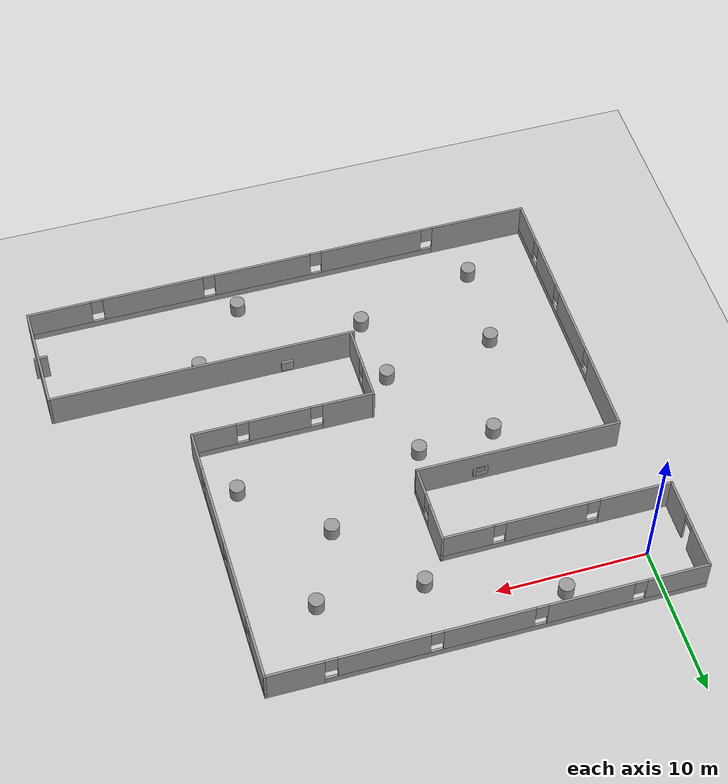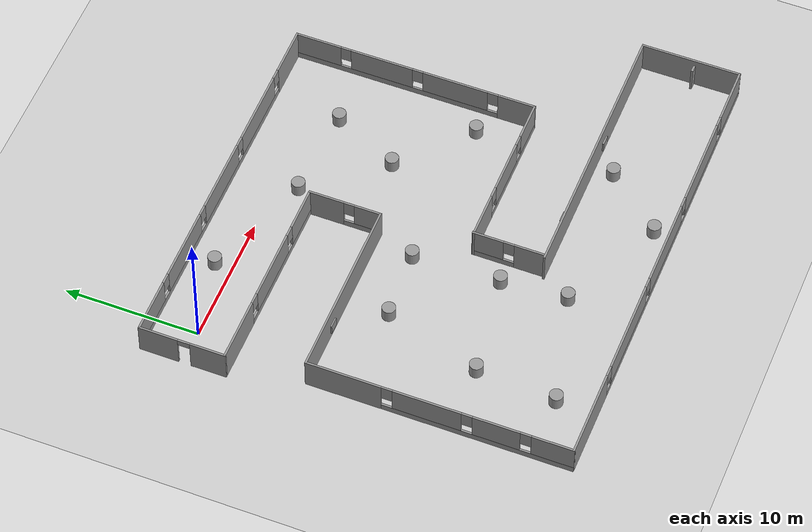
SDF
<sdf version="1.6">
 <world name="default">
  <light name="sun" type="directional">
   <pose>0 0 10 0 -0 0</pose>
   <diffuse>0.8 0.8 0.8 1</diffuse>
   <specular>0.2 0.2 0.2 1</specular>
   <attenuation>
    <range>1000</range>
    <constant>0.9</constant>
    <linear>0.01</linear>
    <quadratic>0.001</quadratic>
   </attenuation>
   <direction>-0.5 0.1 -0.9</direction>
  </light>
  <model name="ground_plane">
   <static>1</static>
   <link name="link">
    <collision name="collision">
     <geometry><plane><normal>0 0 1</normal><size>100 100</size></plane></geometry>
     <surface><friction><ode><mu>100</mu><mu2>50</mu2></ode></friction></surface>
    </collision>
    <visual name="visual">
     <cast_shadows>0</cast_shadows>
     <geometry><plane><normal>0 0 1</normal><size>100 100</size></plane></geometry>
     <material>
      <script><uri>file://media/materials/scripts/gazebo.material</uri><name>Gazebo/Grey</name></script>
     </material>
    </visual>
   </link>
  </model>
  <gravity>0 0 -9.8</gravity>
  <magnetic_field>6e-06 2.3e-05 -4.2e-05</magnetic_field>
  <atmosphere type="adiabatic"/>
  <physics name="default_physics" default="0" type="ode">
   <max_step_size>0.001</max_step_size>
   <real_time_factor>1</real_time_factor>
   <real_time_update_rate>1000</real_time_update_rate>
  </physics>
  <scene><ambient>0.4 0.4 0.4 1</ambient><background>0.7 0.7 0.7 1</background><shadows>1</shadows></scene>
  <spherical_coordinates>
   <surface_model>EARTH_WGS84</surface_model>
   <latitude_deg>0</latitude_deg>
   <longitude_deg>0</longitude_deg>
   <elevation>0</elevation>
   <heading_deg>0</heading_deg>
  </spherical_coordinates>
  <model name="Untitled">
   <pose>15.6406 -12.354 0 0 -0 0</pose>
   <link name="Door_1">
    <collision name="Door_1_Collision">
     <geometry><box><size>0.9 0.17 2</size></box></geometry>
     <pose>0 0 1 0 -0 0</pose>
    </collision>
    <visual name="Door_1_Visual">
     <pose>0 0 1 0 -0 0</pose>
     <geometry><box><size>0.9 0.17 2</size></box></geometry>
     <material>
      <script><uri>file://media/materials/scripts/gazebo.material</uri><name>Gazebo/Grey</name></script>
     </material>
    </visual>
    <pose>18.0092 -12.1111 0 0 -0 0</pose>
   </link>
   <link name="Wall_10">
    <pose>-3.07296 6.50005 0 0 0 -1.5708</pose>
    <visual name="Wall_10_Visual_0">
     <pose>-1.41334 0 1.25 0 -0 0</pose>
     <geometry><box><size>2.67333 0.15 2.5</size></box></geometry>
     <material>
      <script><uri>file://media/materials/scripts/gazebo.material</uri><name>Gazebo/Grey</name></script>
      <ambient>1 1 1 1</ambient>
     </material>
     <meta><layer>0</layer></meta>
    </visual>
    <collision name="Wall_10_Collision_0">
     <geometry><box><size>2.67333 0.15 2.5</size></box></geometry>
     <pose>-1.41334 0 1.25 0 -0 0</pose>
    </collision>
    <visual name="Wall_10_Visual_1">
     <pose>1.33666 0 0.25 0 -0 0</pose>
     <geometry><box><size>2.82667 0.15 0.5</size></box></geometry>
     <material>
      <script><uri>file://media/materials/scripts/gazebo.material</uri><name>Gazebo/Grey</name></script>
      <ambient>1 1 1 1</ambient>
     </material>
     <meta><layer>0</layer></meta>
    </visual>
    <collision name="Wall_10_Collision_1">
     <geometry><box><size>2.82667 0.15 0.5</size></box></geometry>
     <pose>1.33666 0 0.25 0 -0 0</pose>
    </collision>
    <visual name="Wall_10_Visual_2">
     <pose>1.73666 0 1.5 0 -0 0</pose>
     <geometry><box><size>2.02667 0.15 2</size></box></geometry>
     <material>
      <script><uri>file://media/materials/scripts/gazebo.material</uri><name>Gazebo/Grey</name></script>
      <ambient>1 1 1 1</ambient>
     </material>
     <meta><layer>0</layer></meta>
    </visual>
    <collision name="Wall_10_Collision_2">
     <geometry><box><size>2.02667 0.15 2</size></box></geometry>
     <pose>1.73666 0 1.5 0 -0 0</pose>
    </collision>
    <visual name="Wall_10_Visual_3">
     <pose>0.323326 0 1.9 0 -0 0</pose>
     <geometry><box><size>0.8 0.15 1.2</size></box></geometry>
     <material>
      <script><uri>file://media/materials/scripts/gazebo.material</uri><name>Gazebo/Grey</name></script>
      <ambient>1 1 1 1</ambient>
     </material>
     <meta><layer>0</layer></meta>
    </visual>
    <collision name="Wall_10_Collision_3">
     <geometry><box><size>0.8 0.15 1.2</size></box></geometry>
     <pose>0.323326 0 1.9 0 -0 0</pose>
    </collision>
   </link>
   <link name="Wall_11">
    <collision name="Wall_11_Collision">
     <geometry><box><size>13.75 0.15 2.5</size></box></geometry>
     <pose>0 0 1.25 0 -0 0</pose>
    </collision>
    <visual name="Wall_11_Visual">
     <pose>0 0 1.25 0 -0 0</pose>
     <geometry><box><size>13.75 0.15 2.5</size></box></geometry>
     <material>
      <script><uri>file://media/materials/scripts/gazebo.material</uri><name>Gazebo/Grey</name></script>
      <ambient>1 1 1 1</ambient>
     </material>
     <meta><layer>0</layer></meta>
    </visual>
    <pose>-9.87296 3.82505 0 0 -0 3.14159</pose>
   </link>
   <link name="Wall_12">
    <pose>-16.673 -5.84995 0 0 0 -1.5708</pose>
    <visual name="Wall_12_Visual_0">
     <pose>-6.96112 0 1.25 0 -0 0</pose>
     <geometry><box><size>5.57776 0.15 2.5</size></box></geometry>
     <material>
      <script><uri>file://media/materials/scripts/gazebo.material</uri><name>Gazebo/Grey</name></script>
      <ambient>1 1 1 1</ambient>
     </material>
     <meta><layer>0</layer></meta>
    </visual>
    <collision name="Wall_12_Collision_0">
     <geometry><box><size>5.57776 0.15 2.5</size></box></geometry>
     <pose>-6.96112 0 1.25 0 -0 0</pose>
    </collision>
    <visual name="Wall_12_Visual_1">
     <pose>2.78888 0 0.25 0 -0 0</pose>
     <geometry><box><size>13.9222 0.15 0.5</size></box></geometry>
     <material>
      <script><uri>file://media/materials/scripts/gazebo.material</uri><name>Gazebo/Grey</name></script>
      <ambient>1 1 1 1</ambient>
     </material>
     <meta><layer>0</layer></meta>
    </visual>
    <collision name="Wall_12_Collision_1">
     <geometry><box><size>13.9222 0.15 0.5</size></box></geometry>
     <pose>2.78888 0 0.25 0 -0 0</pose>
    </collision>
    <visual name="Wall_12_Visual_2">
     <pose>-0.871375 0 1.5 0 -0 0</pose>
     <geometry><box><size>5.00172 0.15 2</size></box></geometry>
     <material>
      <script><uri>file://media/materials/scripts/gazebo.material</uri><name>Gazebo/Grey</name></script>
      <ambient>1 1 1 1</ambient>
     </material>
     <meta><layer>0</layer></meta>
    </visual>
    <collision name="Wall_12_Collision_2">
     <geometry><box><size>5.00172 0.15 2</size></box></geometry>
     <pose>-0.871375 0 1.5 0 -0 0</pose>
    </collision>
    <visual name="Wall_12_Visual_3">
     <pose>4.14666 0 1.5 0 -0 0</pose>
     <geometry><box><size>3.43435 0.15 2</size></box></geometry>
     <material>
      <script><uri>file://media/materials/scripts/gazebo.material</uri><name>Gazebo/Grey</name></script>
      <ambient>1 1 1 1</ambient>
     </material>
     <meta><layer>0</layer></meta>
    </visual>
    <collision name="Wall_12_Collision_3">
     <geometry><box><size>3.43435 0.15 2</size></box></geometry>
     <pose>4.14666 0 1.5 0 -0 0</pose>
    </collision>
    <visual name="Wall_12_Visual_4">
     <pose>8.20692 0 1.5 0 -0 0</pose>
     <geometry><box><size>3.08617 0.15 2</size></box></geometry>
     <material>
      <script><uri>file://media/materials/scripts/gazebo.material</uri><name>Gazebo/Grey</name></script>
      <ambient>1 1 1 1</ambient>
     </material>
     <meta><layer>0</layer></meta>
    </visual>
    <collision name="Wall_12_Collision_4">
     <geometry><box><size>3.08617 0.15 2</size></box></geometry>
     <pose>8.20692 0 1.5 0 -0 0</pose>
    </collision>
    <visual name="Wall_12_Visual_5">
     <pose>-3.77224 0 1.9 0 -0 0</pose>
     <geometry><box><size>0.8 0.15 1.2</size></box></geometry>
     <material>
      <script><uri>file://media/materials/scripts/gazebo.material</uri><name>Gazebo/Grey</name></script>
      <ambient>1 1 1 1</ambient>
     </material>
     <meta><layer>0</layer></meta>
    </visual>
    <collision name="Wall_12_Collision_5">
     <geometry><box><size>0.8 0.15 1.2</size></box></geometry>
     <pose>-3.77224 0 1.9 0 -0 0</pose>
    </collision>
    <visual name="Wall_12_Visual_6">
     <pose>2.02949 0 1.9 0 -0 0</pose>
     <geometry><box><size>0.8 0.15 1.2</size></box></geometry>
     <material>
      <script><uri>file://media/materials/scripts/gazebo.material</uri><name>Gazebo/Grey</name></script>
      <ambient>1 1 1 1</ambient>
     </material>
     <meta><layer>0</layer></meta>
    </visual>
    <collision name="Wall_12_Collision_6">
     <geometry><box><size>0.8 0.15 1.2</size></box></geometry>
     <pose>2.02949 0 1.9 0 -0 0</pose>
    </collision>
    <visual name="Wall_12_Visual_7">
     <pose>6.26383 0 1.9 0 -0 0</pose>
     <geometry><box><size>0.8 0.15 1.2</size></box></geometry>
     <material>
      <script><uri>file://media/materials/scripts/gazebo.material</uri><name>Gazebo/Grey</name></script>
      <ambient>1 1 1 1</ambient>
     </material>
     <meta><layer>0</layer></meta>
    </visual>
    <collision name="Wall_12_Collision_7">
     <geometry><box><size>0.8 0.15 1.2</size></box></geometry>
     <pose>6.26383 0 1.9 0 -0 0</pose>
    </collision>
   </link>
   <link name="Wall_13">
    <pose>0.749952 -15.5027 0 0 -0 0.001279</pose>
    <visual name="Wall_13_Visual_0">
     <pose>-14.2022 0 1.25 0 -0 0</pose>
     <geometry><box><size>6.59138 0.15 2.5</size></box></geometry>
     <material>
      <script><uri>file://media/materials/scripts/gazebo.material</uri><name>Gazebo/Grey</name></script>
      <ambient>1 1 1 1</ambient>
     </material>
     <meta><layer>0</layer></meta>
    </visual>
    <collision name="Wall_13_Collision_0">
     <geometry><box><size>6.59138 0.15 2.5</size></box></geometry>
     <pose>-14.2022 0 1.25 0 -0 0</pose>
    </collision>
    <visual name="Wall_13_Visual_1">
     <pose>3.29569 0 0.25 0 -0 0</pose>
     <geometry><box><size>28.4045 0.15 0.5</size></box></geometry>
     <material>
      <script><uri>file://media/materials/scripts/gazebo.material</uri><name>Gazebo/Grey</name></script>
      <ambient>1 1 1 1</ambient>
     </material>
     <meta><layer>0</layer></meta>
    </visual>
    <collision name="Wall_13_Collision_1">
     <geometry><box><size>28.4045 0.15 0.5</size></box></geometry>
     <pose>3.29569 0 0.25 0 -0 0</pose>
    </collision>
    <visual name="Wall_13_Visual_2">
     <pose>-6.52488 0 1.5 0 -0 0</pose>
     <geometry><box><size>7.16333 0.15 2</size></box></geometry>
     <material>
      <script><uri>file://media/materials/scripts/gazebo.material</uri><name>Gazebo/Grey</name></script>
      <ambient>1 1 1 1</ambient>
     </material>
     <meta><layer>0</layer></meta>
    </visual>
    <collision name="Wall_13_Collision_2">
     <geometry><box><size>7.16333 0.15 2</size></box></geometry>
     <pose>-6.52488 0 1.5 0 -0 0</pose>
    </collision>
    <visual name="Wall_13_Visual_3">
     <pose>1.22323 0 1.5 0 -0 0</pose>
     <geometry><box><size>6.73288 0.15 2</size></box></geometry>
     <material>
      <script><uri>file://media/materials/scripts/gazebo.material</uri><name>Gazebo/Grey</name></script>
      <ambient>1 1 1 1</ambient>
     </material>
     <meta><layer>0</layer></meta>
    </visual>
    <collision name="Wall_13_Collision_3">
     <geometry><box><size>6.73288 0.15 2</size></box></geometry>
     <pose>1.22323 0 1.5 0 -0 0</pose>
    </collision>
    <visual name="Wall_13_Visual_4">
     <pose>8.86372 0 1.5 0 -0 0</pose>
     <geometry><box><size>6.9481 0.15 2</size></box></geometry>
     <material>
      <script><uri>file://media/materials/scripts/gazebo.material</uri><name>Gazebo/Grey</name></script>
      <ambient>1 1 1 1</ambient>
     </material>
     <meta><layer>0</layer></meta>
    </visual>
    <collision name="Wall_13_Collision_4">
     <geometry><box><size>6.9481 0.15 2</size></box></geometry>
     <pose>8.86372 0 1.5 0 -0 0</pose>
    </collision>
    <visual name="Wall_13_Visual_5">
     <pose>15.3178 0 1.5 0 -0 0</pose>
     <geometry><box><size>4.36016 0.15 2</size></box></geometry>
     <material>
      <script><uri>file://media/materials/scripts/gazebo.material</uri><name>Gazebo/Grey</name></script>
      <ambient>1 1 1 1</ambient>
     </material>
     <meta><layer>0</layer></meta>
    </visual>
    <collision name="Wall_13_Collision_5">
     <geometry><box><size>4.36016 0.15 2</size></box></geometry>
     <pose>15.3178 0 1.5 0 -0 0</pose>
    </collision>
    <visual name="Wall_13_Visual_6">
     <pose>-10.5065 0 1.9 0 -0 0</pose>
     <geometry><box><size>0.8 0.15 1.2</size></box></geometry>
     <material>
      <script><uri>file://media/materials/scripts/gazebo.material</uri><name>Gazebo/Grey</name></script>
      <ambient>1 1 1 1</ambient>
     </material>
     <meta><layer>0</layer></meta>
    </visual>
    <collision name="Wall_13_Collision_6">
     <geometry><box><size>0.8 0.15 1.2</size></box></geometry>
     <pose>-10.5065 0 1.9 0 -0 0</pose>
    </collision>
    <visual name="Wall_13_Visual_7">
     <pose>-2.54321 0 1.9 0 -0 0</pose>
     <geometry><box><size>0.8 0.15 1.2</size></box></geometry>
     <material>
      <script><uri>file://media/materials/scripts/gazebo.material</uri><name>Gazebo/Grey</name></script>
      <ambient>1 1 1 1</ambient>
     </material>
     <meta><layer>0</layer></meta>
    </visual>
    <collision name="Wall_13_Collision_7">
     <geometry><box><size>0.8 0.15 1.2</size></box></geometry>
     <pose>-2.54321 0 1.9 0 -0 0</pose>
    </collision>
    <visual name="Wall_13_Visual_8">
     <pose>4.98966 0 1.9 0 -0 0</pose>
     <geometry><box><size>0.8 0.15 1.2</size></box></geometry>
     <material>
      <script><uri>file://media/materials/scripts/gazebo.material</uri><name>Gazebo/Grey</name></script>
      <ambient>1 1 1 1</ambient>
     </material>
     <meta><layer>0</layer></meta>
    </visual>
    <collision name="Wall_13_Collision_8">
     <geometry><box><size>0.8 0.15 1.2</size></box></geometry>
     <pose>4.98966 0 1.9 0 -0 0</pose>
    </collision>
    <visual name="Wall_13_Visual_9">
     <pose>12.7378 0 1.9 0 -0 0</pose>
     <geometry><box><size>0.8 0.15 1.2</size></box></geometry>
     <material>
      <script><uri>file://media/materials/scripts/gazebo.material</uri><name>Gazebo/Grey</name></script>
      <ambient>1 1 1 1</ambient>
     </material>
     <meta><layer>0</layer></meta>
    </visual>
    <collision name="Wall_13_Collision_9">
     <geometry><box><size>0.8 0.15 1.2</size></box></geometry>
     <pose>12.7378 0 1.9 0 -0 0</pose>
    </collision>
   </link>
   <link name="Wall_14">
    <collision name="Wall_14_Collision">
     <geometry><box><size>7.5 0.15 2.5</size></box></geometry>
     <pose>0 0 1.25 0 -0 0</pose>
    </collision>
    <visual name="Wall_14_Visual">
     <pose>0 0 1.25 0 -0 0</pose>
     <geometry><box><size>7.5 0.15 2.5</size></box></geometry>
     <material>
      <script><uri>file://media/materials/scripts/gazebo.material</uri><name>Gazebo/Grey</name></script>
      <ambient>1 1 1 1</ambient>
     </material>
     <meta><layer>0</layer></meta>
    </visual>
    <pose>18.1729 -11.8054 0 0 -0 1.5708</pose>
   </link>
   <link name="Wall_15">
    <collision name="Wall_15_Collision">
     <geometry><box><size>20.5392 0.15 2.5</size></box></geometry>
     <pose>0 0 1.25 0 -0 0</pose>
    </collision>
    <visual name="Wall_15_Visual">
     <pose>0 0 1.25 0 -0 0</pose>
     <geometry><box><size>20.5392 0.15 2.5</size></box></geometry>
     <material>
      <script><uri>file://media/materials/scripts/gazebo.material</uri><name>Gazebo/Grey</name></script>
      <ambient>1 1 1 1</ambient>
     </material>
     <meta><layer>0</layer></meta>
    </visual>
    <pose>7.83673 -8.12979 0 0 -0 3.14154</pose>
   </link>
   <link name="Wall_16">
    <pose>-2.17179 -5.45422 0 0 -0 1.5708</pose>
    <visual name="Wall_16_Visual_0">
     <pose>-1.56879 0 1.25 0 -0 0</pose>
     <geometry><box><size>2.36241 0.15 2.5</size></box></geometry>
     <material>
      <script><uri>file://media/materials/scripts/gazebo.material</uri><name>Gazebo/Grey</name></script>
      <ambient>1 1 1 1</ambient>
     </material>
     <meta><layer>0</layer></meta>
    </visual>
    <collision name="Wall_16_Collision_0">
     <geometry><box><size>2.36241 0.15 2.5</size></box></geometry>
     <pose>-1.56879 0 1.25 0 -0 0</pose>
    </collision>
    <visual name="Wall_16_Visual_1">
     <pose>1.18121 0 0.25 0 -0 0</pose>
     <geometry><box><size>3.13759 0.15 0.5</size></box></geometry>
     <material>
      <script><uri>file://media/materials/scripts/gazebo.material</uri><name>Gazebo/Grey</name></script>
      <ambient>1 1 1 1</ambient>
     </material>
     <meta><layer>0</layer></meta>
    </visual>
    <collision name="Wall_16_Collision_1">
     <geometry><box><size>3.13759 0.15 0.5</size></box></geometry>
     <pose>1.18121 0 0.25 0 -0 0</pose>
    </collision>
    <visual name="Wall_16_Visual_2">
     <pose>1.58121 0 1.5 0 -0 0</pose>
     <geometry><box><size>2.33758 0.15 2</size></box></geometry>
     <material>
      <script><uri>file://media/materials/scripts/gazebo.material</uri><name>Gazebo/Grey</name></script>
      <ambient>1 1 1 1</ambient>
     </material>
     <meta><layer>0</layer></meta>
    </visual>
    <collision name="Wall_16_Collision_2">
     <geometry><box><size>2.33758 0.15 2</size></box></geometry>
     <pose>1.58121 0 1.5 0 -0 0</pose>
    </collision>
    <visual name="Wall_16_Visual_3">
     <pose>0.012415 0 1.9 0 -0 0</pose>
     <geometry><box><size>0.8 0.15 1.2</size></box></geometry>
     <material>
      <script><uri>file://media/materials/scripts/gazebo.material</uri><name>Gazebo/Grey</name></script>
      <ambient>1 1 1 1</ambient>
     </material>
     <meta><layer>0</layer></meta>
    </visual>
    <collision name="Wall_16_Collision_3">
     <geometry><box><size>0.8 0.15 1.2</size></box></geometry>
     <pose>0.012415 0 1.9 0 -0 0</pose>
    </collision>
   </link>
   <link name="Wall_5">
    <pose>3.87704 -2.82495 0 0 -0 0</pose>
    <visual name="Wall_5_Visual_0">
     <pose>-4.37582 0 1.25 0 -0 0</pose>
     <geometry><box><size>3.49837 0.15 2.5</size></box></geometry>
     <material>
      <script><uri>file://media/materials/scripts/gazebo.material</uri><name>Gazebo/Grey</name></script>
      <ambient>1 1 1 1</ambient>
     </material>
     <meta><layer>0</layer></meta>
    </visual>
    <collision name="Wall_5_Collision_0">
     <geometry><box><size>3.49837 0.15 2.5</size></box></geometry>
     <pose>-4.37582 0 1.25 0 -0 0</pose>
    </collision>
    <visual name="Wall_5_Visual_1">
     <pose>1.74918 0 0.25 0 -0 0</pose>
     <geometry><box><size>8.75163 0.15 0.5</size></box></geometry>
     <material>
      <script><uri>file://media/materials/scripts/gazebo.material</uri><name>Gazebo/Grey</name></script>
      <ambient>1 1 1 1</ambient>
     </material>
     <meta><layer>0</layer></meta>
    </visual>
    <collision name="Wall_5_Collision_1">
     <geometry><box><size>8.75163 0.15 0.5</size></box></geometry>
     <pose>1.74918 0 0.25 0 -0 0</pose>
    </collision>
    <visual name="Wall_5_Visual_2">
     <pose>0.248459 0 1.5 0 -0 0</pose>
     <geometry><box><size>4.15018 0.15 2</size></box></geometry>
     <material>
      <script><uri>file://media/materials/scripts/gazebo.material</uri><name>Gazebo/Grey</name></script>
      <ambient>1 1 1 1</ambient>
     </material>
     <meta><layer>0</layer></meta>
    </visual>
    <collision name="Wall_5_Collision_2">
     <geometry><box><size>4.15018 0.15 2</size></box></geometry>
     <pose>0.248459 0 1.5 0 -0 0</pose>
    </collision>
    <visual name="Wall_5_Visual_3">
     <pose>4.62427 0 1.5 0 -0 0</pose>
     <geometry><box><size>3.00145 0.15 2</size></box></geometry>
     <material>
      <script><uri>file://media/materials/scripts/gazebo.material</uri><name>Gazebo/Grey</name></script>
      <ambient>1 1 1 1</ambient>
     </material>
     <meta><layer>0</layer></meta>
    </visual>
    <collision name="Wall_5_Collision_3">
     <geometry><box><size>3.00145 0.15 2</size></box></geometry>
     <pose>4.62427 0 1.5 0 -0 0</pose>
    </collision>
    <visual name="Wall_5_Visual_4">
     <pose>-2.22663 0 1.9 0 -0 0</pose>
     <geometry><box><size>0.8 0.15 1.2</size></box></geometry>
     <material>
      <script><uri>file://media/materials/scripts/gazebo.material</uri><name>Gazebo/Grey</name></script>
      <ambient>1 1 1 1</ambient>
     </material>
     <meta><layer>0</layer></meta>
    </visual>
    <collision name="Wall_5_Collision_4">
     <geometry><box><size>0.8 0.15 1.2</size></box></geometry>
     <pose>-2.22663 0 1.9 0 -0 0</pose>
    </collision>
    <visual name="Wall_5_Visual_5">
     <pose>2.72355 0 1.9 0 -0 0</pose>
     <geometry><box><size>0.8 0.15 1.2</size></box></geometry>
     <material>
      <script><uri>file://media/materials/scripts/gazebo.material</uri><name>Gazebo/Grey</name></script>
      <ambient>1 1 1 1</ambient>
     </material>
     <meta><layer>0</layer></meta>
    </visual>
    <collision name="Wall_5_Collision_5">
     <geometry><box><size>0.8 0.15 1.2</size></box></geometry>
     <pose>2.72355 0 1.9 0 -0 0</pose>
    </collision>
   </link>
   <link name="Wall_6">
    <pose>9.92704 6.35005 0 0 -0 1.5708</pose>
    <visual name="Wall_6_Visual_0">
     <pose>-7.82709 0 1.25 0 -0 0</pose>
     <geometry><box><size>2.84582 0.15 2.5</size></box></geometry>
     <material>
      <script><uri>file://media/materials/scripts/gazebo.material</uri><name>Gazebo/Grey</name></script>
      <ambient>1 1 1 1</ambient>
     </material>
     <meta><layer>0</layer></meta>
    </visual>
    <collision name="Wall_6_Collision_0">
     <geometry><box><size>2.84582 0.15 2.5</size></box></geometry>
     <pose>-7.82709 0 1.25 0 -0 0</pose>
    </collision>
    <visual name="Wall_6_Visual_1">
     <pose>1.42291 0 0.25 0 -0 0</pose>
     <geometry><box><size>15.6542 0.15 0.5</size></box></geometry>
     <material>
      <script><uri>file://media/materials/scripts/gazebo.material</uri><name>Gazebo/Grey</name></script>
      <ambient>1 1 1 1</ambient>
     </material>
     <meta><layer>0</layer></meta>
    </visual>
    <collision name="Wall_6_Collision_1">
     <geometry><box><size>15.6542 0.15 0.5</size></box></geometry>
     <pose>1.42291 0 0.25 0 -0 0</pose>
    </collision>
    <visual name="Wall_6_Visual_2">
     <pose>-3.11504 0 1.5 0 -0 0</pose>
     <geometry><box><size>4.97827 0.15 2</size></box></geometry>
     <material>
      <script><uri>file://media/materials/scripts/gazebo.material</uri><name>Gazebo/Grey</name></script>
      <ambient>1 1 1 1</ambient>
     </material>
     <meta><layer>0</layer></meta>
    </visual>
    <collision name="Wall_6_Collision_2">
     <geometry><box><size>4.97827 0.15 2</size></box></geometry>
     <pose>-3.11504 0 1.5 0 -0 0</pose>
    </collision>
    <visual name="Wall_6_Visual_3">
     <pose>2.55622 0 1.5 0 -0 0</pose>
     <geometry><box><size>4.76426 0.15 2</size></box></geometry>
     <material>
      <script><uri>file://media/materials/scripts/gazebo.material</uri><name>Gazebo/Grey</name></script>
      <ambient>1 1 1 1</ambient>
     </material>
     <meta><layer>0</layer></meta>
    </visual>
    <collision name="Wall_6_Collision_3">
     <geometry><box><size>4.76426 0.15 2</size></box></geometry>
     <pose>2.55622 0 1.5 0 -0 0</pose>
    </collision>
    <visual name="Wall_6_Visual_4">
     <pose>7.49418 0 1.5 0 -0 0</pose>
     <geometry><box><size>3.51165 0.15 2</size></box></geometry>
     <material>
      <script><uri>file://media/materials/scripts/gazebo.material</uri><name>Gazebo/Grey</name></script>
      <ambient>1 1 1 1</ambient>
     </material>
     <meta><layer>0</layer></meta>
    </visual>
    <collision name="Wall_6_Collision_4">
     <geometry><box><size>3.51165 0.15 2</size></box></geometry>
     <pose>7.49418 0 1.5 0 -0 0</pose>
    </collision>
    <visual name="Wall_6_Visual_5">
     <pose>-6.00418 0 1.9 0 -0 0</pose>
     <geometry><box><size>0.8 0.15 1.2</size></box></geometry>
     <material>
      <script><uri>file://media/materials/scripts/gazebo.material</uri><name>Gazebo/Grey</name></script>
      <ambient>1 1 1 1</ambient>
     </material>
     <meta><layer>0</layer></meta>
    </visual>
    <collision name="Wall_6_Collision_5">
     <geometry><box><size>0.8 0.15 1.2</size></box></geometry>
     <pose>-6.00418 0 1.9 0 -0 0</pose>
    </collision>
    <visual name="Wall_6_Visual_6">
     <pose>-0.225907 0 1.9 0 -0 0</pose>
     <geometry><box><size>0.8 0.15 1.2</size></box></geometry>
     <material>
      <script><uri>file://media/materials/scripts/gazebo.material</uri><name>Gazebo/Grey</name></script>
      <ambient>1 1 1 1</ambient>
     </material>
     <meta><layer>0</layer></meta>
    </visual>
    <collision name="Wall_6_Collision_6">
     <geometry><box><size>0.8 0.15 1.2</size></box></geometry>
     <pose>-0.225907 0 1.9 0 -0 0</pose>
    </collision>
    <visual name="Wall_6_Visual_7">
     <pose>5.33835 0 1.9 0 -0 0</pose>
     <geometry><box><size>0.8 0.15 1.2</size></box></geometry>
     <material>
      <script><uri>file://media/materials/scripts/gazebo.material</uri><name>Gazebo/Grey</name></script>
      <ambient>1 1 1 1</ambient>
     </material>
     <meta><layer>0</layer></meta>
    </visual>
    <collision name="Wall_6_Collision_7">
     <geometry><box><size>0.8 0.15 1.2</size></box></geometry>
     <pose>5.33835 0 1.9 0 -0 0</pose>
    </collision>
   </link>
   <link name="Wall_7">
    <pose>-4.12296 15.525 0 0 -0 3.14159</pose>
    <visual name="Wall_7_Visual_0">
     <pose>-12.2464 0 1.25 0 -0 0</pose>
     <geometry><box><size>3.75725 0.15 2.5</size></box></geometry>
     <material>
      <script><uri>file://media/materials/scripts/gazebo.material</uri><name>Gazebo/Grey</name></script>
      <ambient>1 1 1 1</ambient>
     </material>
     <meta><layer>0</layer></meta>
    </visual>
    <collision name="Wall_7_Collision_0">
     <geometry><box><size>3.75725 0.15 2.5</size></box></geometry>
     <pose>-12.2464 0 1.25 0 -0 0</pose>
    </collision>
    <visual name="Wall_7_Visual_1">
     <pose>1.87862 0 0.25 0 -0 0</pose>
     <geometry><box><size>24.4928 0.15 0.5</size></box></geometry>
     <material>
      <script><uri>file://media/materials/scripts/gazebo.material</uri><name>Gazebo/Grey</name></script>
      <ambient>1 1 1 1</ambient>
     </material>
     <meta><layer>0</layer></meta>
    </visual>
    <collision name="Wall_7_Collision_1">
     <geometry><box><size>24.4928 0.15 0.5</size></box></geometry>
     <pose>1.87862 0 0.25 0 -0 0</pose>
    </collision>
    <visual name="Wall_7_Visual_2">
     <pose>-6.66401 0 1.5 0 -0 0</pose>
     <geometry><box><size>5.80749 0.15 2</size></box></geometry>
     <material>
      <script><uri>file://media/materials/scripts/gazebo.material</uri><name>Gazebo/Grey</name></script>
      <ambient>1 1 1 1</ambient>
     </material>
     <meta><layer>0</layer></meta>
    </visual>
    <collision name="Wall_7_Collision_2">
     <geometry><box><size>5.80749 0.15 2</size></box></geometry>
     <pose>-6.66401 0 1.5 0 -0 0</pose>
    </collision>
    <visual name="Wall_7_Visual_3">
     <pose>-0.056517 0 1.5 0 -0 0</pose>
     <geometry><box><size>5.80749 0.15 2</size></box></geometry>
     <material>
      <script><uri>file://media/materials/scripts/gazebo.material</uri><name>Gazebo/Grey</name></script>
      <ambient>1 1 1 1</ambient>
     </material>
     <meta><layer>0</layer></meta>
    </visual>
    <collision name="Wall_7_Collision_3">
     <geometry><box><size>5.80749 0.15 2</size></box></geometry>
     <pose>-0.056517 0 1.5 0 -0 0</pose>
    </collision>
    <visual name="Wall_7_Visual_4">
     <pose>6.42861 0 1.5 0 -0 0</pose>
     <geometry><box><size>5.56277 0.15 2</size></box></geometry>
     <material>
      <script><uri>file://media/materials/scripts/gazebo.material</uri><name>Gazebo/Grey</name></script>
      <ambient>1 1 1 1</ambient>
     </material>
     <meta><layer>0</layer></meta>
    </visual>
    <collision name="Wall_7_Collision_4">
     <geometry><box><size>5.56277 0.15 2</size></box></geometry>
     <pose>6.42861 0 1.5 0 -0 0</pose>
    </collision>
    <visual name="Wall_7_Visual_5">
     <pose>12.0675 0 1.5 0 -0 0</pose>
     <geometry><box><size>4.11501 0.15 2</size></box></geometry>
     <material>
      <script><uri>file://media/materials/scripts/gazebo.material</uri><name>Gazebo/Grey</name></script>
      <ambient>1 1 1 1</ambient>
     </material>
     <meta><layer>0</layer></meta>
    </visual>
    <collision name="Wall_7_Collision_5">
     <geometry><box><size>4.11501 0.15 2</size></box></geometry>
     <pose>12.0675 0 1.5 0 -0 0</pose>
    </collision>
    <visual name="Wall_7_Visual_6">
     <pose>-9.96775 0 1.9 0 -0 0</pose>
     <geometry><box><size>0.8 0.15 1.2</size></box></geometry>
     <material>
      <script><uri>file://media/materials/scripts/gazebo.material</uri><name>Gazebo/Grey</name></script>
      <ambient>1 1 1 1</ambient>
     </material>
     <meta><layer>0</layer></meta>
    </visual>
    <collision name="Wall_7_Collision_6">
     <geometry><box><size>0.8 0.15 1.2</size></box></geometry>
     <pose>-9.96775 0 1.9 0 -0 0</pose>
    </collision>
    <visual name="Wall_7_Visual_7">
     <pose>-3.36026 0 1.9 0 -0 0</pose>
     <geometry><box><size>0.8 0.15 1.2</size></box></geometry>
     <material>
      <script><uri>file://media/materials/scripts/gazebo.material</uri><name>Gazebo/Grey</name></script>
      <ambient>1 1 1 1</ambient>
     </material>
     <meta><layer>0</layer></meta>
    </visual>
    <collision name="Wall_7_Collision_7">
     <geometry><box><size>0.8 0.15 1.2</size></box></geometry>
     <pose>-3.36026 0 1.9 0 -0 0</pose>
    </collision>
    <visual name="Wall_7_Visual_8">
     <pose>3.24723 0 1.9 0 -0 0</pose>
     <geometry><box><size>0.8 0.15 1.2</size></box></geometry>
     <material>
      <script><uri>file://media/materials/scripts/gazebo.material</uri><name>Gazebo/Grey</name></script>
      <ambient>1 1 1 1</ambient>
     </material>
     <meta><layer>0</layer></meta>
    </visual>
    <collision name="Wall_7_Collision_8">
     <geometry><box><size>0.8 0.15 1.2</size></box></geometry>
     <pose>3.24723 0 1.9 0 -0 0</pose>
    </collision>
    <visual name="Wall_7_Visual_9">
     <pose>9.60999 0 1.9 0 -0 0</pose>
     <geometry><box><size>0.8 0.15 1.2</size></box></geometry>
     <material>
      <script><uri>file://media/materials/scripts/gazebo.material</uri><name>Gazebo/Grey</name></script>
      <ambient>1 1 1 1</ambient>
     </material>
     <meta><layer>0</layer></meta>
    </visual>
    <collision name="Wall_7_Collision_9">
     <geometry><box><size>0.8 0.15 1.2</size></box></geometry>
     <pose>9.60999 0 1.9 0 -0 0</pose>
    </collision>
   </link>
   <link name="Wall_8">
    <pose>-18.173 12.35 0 0 0 -1.5708</pose>
    <visual name="Wall_8_Visual_0">
     <pose>-1.77965 0 1.25 0 -0 0</pose>
     <geometry><box><size>2.94069 0.15 2.5</size></box></geometry>
     <material>
      <script><uri>file://media/materials/scripts/gazebo.material</uri><name>Gazebo/Grey</name></script>
      <ambient>1 1 1 1</ambient>
     </material>
     <meta><layer>0</layer></meta>
    </visual>
    <collision name="Wall_8_Collision_0">
     <geometry><box><size>2.94069 0.15 2.5</size></box></geometry>
     <pose>-1.77965 0 1.25 0 -0 0</pose>
    </collision>
    <visual name="Wall_8_Visual_1">
     <pose>1.92035 0 1.25 0 -0 0</pose>
     <geometry><box><size>2.65931 0.15 2.5</size></box></geometry>
     <material>
      <script><uri>file://media/materials/scripts/gazebo.material</uri><name>Gazebo/Grey</name></script>
      <ambient>1 1 1 1</ambient>
     </material>
     <meta><layer>0</layer></meta>
    </visual>
    <collision name="Wall_8_Collision_1">
     <geometry><box><size>2.65931 0.15 2.5</size></box></geometry>
     <pose>1.92035 0 1.25 0 -0 0</pose>
    </collision>
    <visual name="Wall_8_Visual_2">
     <pose>0.140693 0 2.25 0 -0 0</pose>
     <geometry><box><size>0.9 0.15 0.5</size></box></geometry>
     <material>
      <script><uri>file://media/materials/scripts/gazebo.material</uri><name>Gazebo/Grey</name></script>
      <ambient>1 1 1 1</ambient>
     </material>
     <meta><layer>0</layer></meta>
    </visual>
    <collision name="Wall_8_Collision_2">
     <geometry><box><size>0.9 0.15 0.5</size></box></geometry>
     <pose>0.140693 0 2.25 0 -0 0</pose>
    </collision>
   </link>
   <link name="Wall_9">
    <pose>-10.623 9.17505 0 0 -0 0</pose>
    <visual name="Wall_9_Visual_0">
     <pose>-5.21155 0 1.25 0 -0 0</pose>
     <geometry><box><size>4.8269 0.15 2.5</size></box></geometry>
     <material>
      <script><uri>file://media/materials/scripts/gazebo.material</uri><name>Gazebo/Grey</name></script>
      <ambient>1 1 1 1</ambient>
     </material>
     <meta><layer>0</layer></meta>
    </visual>
    <collision name="Wall_9_Collision_0">
     <geometry><box><size>4.8269 0.15 2.5</size></box></geometry>
     <pose>-5.21155 0 1.25 0 -0 0</pose>
    </collision>
    <visual name="Wall_9_Visual_1">
     <pose>2.41345 0 0.25 0 -0 0</pose>
     <geometry><box><size>10.4231 0.15 0.5</size></box></geometry>
     <material>
      <script><uri>file://media/materials/scripts/gazebo.material</uri><name>Gazebo/Grey</name></script>
      <ambient>1 1 1 1</ambient>
     </material>
     <meta><layer>0</layer></meta>
    </visual>
    <collision name="Wall_9_Collision_1">
     <geometry><box><size>10.4231 0.15 0.5</size></box></geometry>
     <pose>2.41345 0 0.25 0 -0 0</pose>
    </collision>
    <visual name="Wall_9_Visual_2">
     <pose>0.697634 0 1.5 0 -0 0</pose>
     <geometry><box><size>5.39146 0.15 2</size></box></geometry>
     <material>
      <script><uri>file://media/materials/scripts/gazebo.material</uri><name>Gazebo/Grey</name></script>
      <ambient>1 1 1 1</ambient>
     </material>
     <meta><layer>0</layer></meta>
    </visual>
    <collision name="Wall_9_Collision_2">
     <geometry><box><size>5.39146 0.15 2</size></box></geometry>
     <pose>0.697634 0 1.5 0 -0 0</pose>
    </collision>
    <visual name="Wall_9_Visual_3">
     <pose>5.90918 0 1.5 0 -0 0</pose>
     <geometry><box><size>3.43163 0.15 2</size></box></geometry>
     <material>
      <script><uri>file://media/materials/scripts/gazebo.material</uri><name>Gazebo/Grey</name></script>
      <ambient>1 1 1 1</ambient>
     </material>
     <meta><layer>0</layer></meta>
    </visual>
    <collision name="Wall_9_Collision_3">
     <geometry><box><size>3.43163 0.15 2</size></box></geometry>
     <pose>5.90918 0 1.5 0 -0 0</pose>
    </collision>
    <visual name="Wall_9_Visual_4">
     <pose>-2.3981 0 1.9 0 -0 0</pose>
     <geometry><box><size>0.8 0.15 1.2</size></box></geometry>
     <material>
      <script><uri>file://media/materials/scripts/gazebo.material</uri><name>Gazebo/Grey</name></script>
      <ambient>1 1 1 1</ambient>
     </material>
     <meta><layer>0</layer></meta>
    </visual>
    <collision name="Wall_9_Collision_4">
     <geometry><box><size>0.8 0.15 1.2</size></box></geometry>
     <pose>-2.3981 0 1.9 0 -0 0</pose>
    </collision>
    <visual name="Wall_9_Visual_5">
     <pose>3.79337 0 1.9 0 -0 0</pose>
     <geometry><box><size>0.8 0.15 1.2</size></box></geometry>
     <material>
      <script><uri>file://media/materials/scripts/gazebo.material</uri><name>Gazebo/Grey</name></script>
      <ambient>1 1 1 1</ambient>
     </material>
     <meta><layer>0</layer></meta>
    </visual>
    <collision name="Wall_9_Collision_5">
     <geometry><box><size>0.8 0.15 1.2</size></box></geometry>
     <pose>3.79337 0 1.9 0 -0 0</pose>
    </collision>
   </link>
   <link name="Window_10">
    <collision name="Window_10_Collision">
     <geometry><box><size>0.8 0.17 0.8</size></box></geometry>
     <pose>0 0 0.4 0 -0 0</pose>
    </collision>
    <visual name="Window_10_Visual">
     <pose>0 0 0.4 0 -0 0</pose>
     <geometry><box><size>0.8 0.17 0.8</size></box></geometry>
     <material>
      <script><uri>file://media/materials/scripts/gazebo.material</uri><name>Gazebo/Grey</name></script>
     </material>
    </visual>
    <pose>2.29609 -7.80928 0.5 0 -0 0</pose>
   </link>
   <link name="Window_11">
    <collision name="Window_11_Collision">
     <geometry><box><size>0.8 0.17 0.8</size></box></geometry>
     <pose>0 0 0.4 0 -0 0</pose>
    </collision>
    <visual name="Window_11_Visual">
     <pose>0 0 0.4 0 -0 0</pose>
     <geometry><box><size>0.8 0.17 0.8</size></box></geometry>
     <material>
      <script><uri>file://media/materials/scripts/gazebo.material</uri><name>Gazebo/Grey</name></script>
     </material>
    </visual>
    <pose>9.82897 -8.23973 0.5 0 -0 0</pose>
   </link>
   <link name="Window_19">
    <collision name="Window_19_Collision">
     <geometry><box><size>0.8 0.17 0.8</size></box></geometry>
     <pose>0 0 0.4 0 -0 0</pose>
    </collision>
    <visual name="Window_19_Visual">
     <pose>0 0 0.4 0 -0 0</pose>
     <geometry><box><size>0.8 0.17 0.8</size></box></geometry>
     <material>
      <script><uri>file://media/materials/scripts/gazebo.material</uri><name>Gazebo/Grey</name></script>
     </material>
    </visual>
    <pose>-12.1131 3.72401 0.5 0 -0 0</pose>
   </link>
   <link name="Window_20">
    <collision name="Window_20_Collision">
     <geometry><box><size>0.8 0.17 0.8</size></box></geometry>
     <pose>0 0 0.4 0 -0 0</pose>
    </collision>
    <visual name="Window_20_Visual">
     <pose>0 0 0.4 0 -0 0</pose>
     <geometry><box><size>0.8 0.17 0.8</size></box></geometry>
     <material>
      <script><uri>file://media/materials/scripts/gazebo.material</uri><name>Gazebo/Grey</name></script>
     </material>
    </visual>
    <pose>-7.43431 3.91116 0.5 0 -0 0</pose>
   </link>
   <link name="Window_21">
    <collision name="Window_21_Collision">
     <geometry><box><size>0.8 0.17 0.8</size></box></geometry>
     <pose>0 0 0.4 0 -0 0</pose>
    </collision>
    <visual name="Window_21_Visual">
     <pose>0 0 0.4 0 -0 0</pose>
     <geometry><box><size>0.8 0.17 0.8</size></box></geometry>
     <material>
      <script><uri>file://media/materials/scripts/gazebo.material</uri><name>Gazebo/Grey</name></script>
     </material>
    </visual>
    <pose>-7.24715 3.91116 0.5 0 -0 0</pose>
   </link>
   <static>1</static>
  </model>
  <model name="unit_cylinder">
   <pose>5.89951 1.26645 0.499992 -3e-06 3e-06 0</pose>
   <link name="link">
    <inertial>
     <mass>1</mass>
     <inertia><ixx>0.145833</ixx><ixy>0</ixy><ixz>0</ixz><iyy>0.145833</iyy><iyz>0</iyz><izz>0.125</izz></inertia>
    </inertial>
    <collision name="collision">
     <geometry><cylinder><radius>0.5</radius><length>1</length></cylinder></geometry>
    </collision>
    <visual name="visual">
     <geometry><cylinder><radius>0.5</radius><length>1</length></cylinder></geometry>
     <material>
      <script><name>Gazebo/Grey</name><uri>file://media/materials/scripts/gazebo.material</uri></script>
     </material>
    </visual>
   </link>
  </model>
  <model name="unit_cylinder_0">
   <pose>14.1307 -1.62877 0.499998 3e-06 -3e-06 0</pose>
   <link name="link">
    <inertial>
     <mass>1</mass>
     <inertia><ixx>0.145833</ixx><ixy>0</ixy><ixz>0</ixz><iyy>0.145833</iyy><iyz>0</iyz><izz>0.125</izz></inertia>
    </inertial>
    <collision name="collision">
     <geometry><cylinder><radius>0.5</radius><length>1</length></cylinder></geometry>
    </collision>
    <visual name="visual">
     <geometry><cylinder><radius>0.5</radius><length>1</length></cylinder></geometry>
     <material>
      <script><name>Gazebo/Grey</name><uri>file://media/materials/scripts/gazebo.material</uri></script>
     </material>
    </visual>
   </link>
  </model>
  <model name="unit_cylinder_1">
   <pose>20.9861 -1.97271 0.499992 -3e-06 3e-06 0</pose>
   <link name="link">
    <inertial>
     <mass>1</mass>
     <inertia><ixx>0.145833</ixx><ixy>0</ixy><ixz>0</ixz><iyy>0.145833</iyy><iyz>0</iyz><izz>0.125</izz></inertia>
    </inertial>
    <collision name="collision">
     <geometry><cylinder><radius>0.5</radius><length>1</length></cylinder></geometry>
    </collision>
    <visual name="visual">
     <geometry><cylinder><radius>0.5</radius><length>1</length></cylinder></geometry>
     <material>
      <script><name>Gazebo/Grey</name><uri>file://media/materials/scripts/gazebo.material</uri></script>
     </material>
    </visual>
   </link>
  </model>
  <model name="unit_cylinder_2">
   <pose>18.5895 -6.99732 0.499998 3e-06 -3e-06 0</pose>
   <link name="link">
    <inertial>
     <mass>1</mass>
     <inertia><ixx>0.145833</ixx><ixy>0</ixy><ixz>0</ixz><iyy>0.145833</iyy><iyz>0</iyz><izz>0.125</izz></inertia>
    </inertial>
    <collision name="collision">
     <geometry><cylinder><radius>0.5</radius><length>1</length></cylinder></geometry>
    </collision>
    <visual name="visual">
     <geometry><cylinder><radius>0.5</radius><length>1</length></cylinder></geometry>
     <material>
      <script><name>Gazebo/Grey</name><uri>file://media/materials/scripts/gazebo.material</uri></script>
     </material>
    </visual>
   </link>
  </model>
  <model name="unit_cylinder_3">
   <pose>23.5747 -11.5193 0.499992 -3e-06 3e-06 0</pose>
   <link name="link">
    <inertial>
     <mass>1</mass>
     <inertia><ixx>0.145833</ixx><ixy>0</ixy><ixz>0</ixz><iyy>0.145833</iyy><iyz>0</iyz><izz>0.125</izz></inertia>
    </inertial>
    <collision name="collision">
     <geometry><cylinder><radius>0.5</radius><length>1</length></cylinder></geometry>
    </collision>
    <visual name="visual">
     <geometry><cylinder><radius>0.5</radius><length>1</length></cylinder></geometry>
     <material>
      <script><name>Gazebo/Grey</name><uri>file://media/materials/scripts/gazebo.material</uri></script>
     </material>
    </visual>
   </link>
  </model>
  <model name="unit_cylinder_4">
   <pose>11.4904 -11.345 0.499998 3e-06 -4e-06 0</pose>
   <link name="link">
    <inertial>
     <mass>1</mass>
     <inertia><ixx>0.145833</ixx><ixy>0</ixy><ixz>0</ixz><iyy>0.145833</iyy><iyz>0</iyz><izz>0.125</izz></inertia>
    </inertial>
    <collision name="collision">
     <geometry><cylinder><radius>0.5</radius><length>1</length></cylinder></geometry>
    </collision>
    <visual name="visual">
     <geometry><cylinder><radius>0.5</radius><length>1</length></cylinder></geometry>
     <material>
      <script><name>Gazebo/Grey</name><uri>file://media/materials/scripts/gazebo.material</uri></script>
     </material>
    </visual>
   </link>
  </model>
  <model name="unit_cylinder_5">
   <pose>11.7155 -17.8531 0.499992 -3e-06 4e-06 0</pose>
   <link name="link">
    <inertial>
     <mass>1</mass>
     <inertia><ixx>0.145833</ixx><ixy>0</ixy><ixz>0</ixz><iyy>0.145833</iyy><iyz>0</iyz><izz>0.125</izz></inertia>
    </inertial>
    <collision name="collision">
     <geometry><cylinder><radius>0.5</radius><length>1</length></cylinder></geometry>
    </collision>
    <visual name="visual">
     <geometry><cylinder><radius>0.5</radius><length>1</length></cylinder></geometry>
     <material>
      <script><name>Gazebo/Grey</name><uri>file://media/materials/scripts/gazebo.material</uri></script>
     </material>
    </visual>
   </link>
  </model>
  <model name="unit_cylinder_6">
   <pose>6.31109 -11.6514 0.499998 3e-06 -4e-06 0</pose>
   <link name="link">
    <inertial>
     <mass>1</mass>
     <inertia><ixx>0.145833</ixx><ixy>0</ixy><ixz>0</ixz><iyy>0.145833</iyy><iyz>0</iyz><izz>0.125</izz></inertia>
    </inertial>
    <collision name="collision">
     <geometry><cylinder><radius>0.5</radius><length>1</length></cylinder></geometry>
    </collision>
    <visual name="visual">
     <geometry><cylinder><radius>0.5</radius><length>1</length></cylinder></geometry>
     <material>
      <script><name>Gazebo/Grey</name><uri>file://media/materials/scripts/gazebo.material</uri></script>
     </material>
    </visual>
   </link>
  </model>
  <model name="unit_cylinder_7">
   <pose>4.10539 -18.9703 0.499992 -3e-06 -4e-06 -0</pose>
   <link name="link">
    <inertial>
     <mass>1</mass>
     <inertia><ixx>0.145833</ixx><ixy>0</ixy><ixz>0</ixz><iyy>0.145833</iyy><iyz>0</iyz><izz>0.125</izz></inertia>
    </inertial>
    <collision name="collision">
     <geometry><cylinder><radius>0.5</radius><length>1</length></cylinder></geometry>
    </collision>
    <visual name="visual">
     <geometry><cylinder><radius>0.5</radius><length>1</length></cylinder></geometry>
     <material>
      <script><name>Gazebo/Grey</name><uri>file://media/materials/scripts/gazebo.material</uri></script>
     </material>
    </visual>
   </link>
  </model>
  <model name="unit_cylinder_8">
   <pose>12.0835 -22.7224 0.499993 -3e-06 -3e-06 0</pose>
   <link name="link">
    <inertial>
     <mass>1</mass>
     <inertia><ixx>0.145833</ixx><ixy>0</ixy><ixz>0</ixz><iyy>0.145833</iyy><iyz>0</iyz><izz>0.125</izz></inertia>
    </inertial>
    <collision name="collision">
     <geometry><cylinder><radius>0.5</radius><length>1</length></cylinder></geometry>
    </collision>
    <visual name="visual">
     <geometry><cylinder><radius>0.5</radius><length>1</length></cylinder></geometry>
     <material>
      <script><name>Gazebo/Grey</name><uri>file://media/materials/scripts/gazebo.material</uri></script>
     </material>
    </visual>
   </link>
  </model>
  <model name="unit_cylinder_9">
   <pose>3.73779 -24.9206 0.499997 3e-06 4e-06 -0</pose>
   <link name="link">
    <inertial>
     <mass>1</mass>
     <inertia><ixx>0.145833</ixx><ixy>0</ixy><ixz>0</ixz><iyy>0.145833</iyy><iyz>0</iyz><izz>0.125</izz></inertia>
    </inertial>
    <collision name="collision">
     <geometry><cylinder><radius>0.5</radius><length>1</length></cylinder></geometry>
    </collision>
    <visual name="visual">
     <geometry><cylinder><radius>0.5</radius><length>1</length></cylinder></geometry>
     <material>
      <script><name>Gazebo/Grey</name><uri>file://media/materials/scripts/gazebo.material</uri></script>
     </material>
    </visual>
   </link>
  </model>
  <model name="unit_cylinder_10">
   <pose>19.8139 -26.3409 0.499993 -3e-06 -4e-06 -0</pose>
   <link name="link">
    <inertial>
     <mass>1</mass>
     <inertia><ixx>0.145833</ixx><ixy>0</ixy><ixz>0</ixz><iyy>0.145833</iyy><iyz>0</iyz><izz>0.125</izz></inertia>
    </inertial>
    <collision name="collision">
     <geometry><cylinder><radius>0.5</radius><length>1</length></cylinder></geometry>
    </collision>
    <visual name="visual">
     <geometry><cylinder><radius>0.5</radius><length>1</length></cylinder></geometry>
     <material>
      <script><name>Gazebo/Grey</name><uri>file://media/materials/scripts/gazebo.material</uri></script>
     </material>
    </visual>
   </link>
  </model>
  <model name="unit_cylinder_11">
   <pose>23.5533 -21.9697 0.499997 3e-06 4e-06 -0</pose>
   <link name="link">
    <inertial>
     <mass>1</mass>
     <inertia><ixx>0.145833</ixx><ixy>0</ixy><ixz>0</ixz><iyy>0.145833</iyy><iyz>0</iyz><izz>0.125</izz></inertia>
    </inertial>
    <collision name="collision">
     <geometry><cylinder><radius>0.5</radius><length>1</length></cylinder></geometry>
    </collision>
    <visual name="visual">
     <geometry><cylinder><radius>0.5</radius><length>1</length></cylinder></geometry>
     <material>
      <script><name>Gazebo/Grey</name><uri>file://media/materials/scripts/gazebo.material</uri></script>
     </material>
    </visual>
   </link>
  </model>
 </world>
</sdf>
